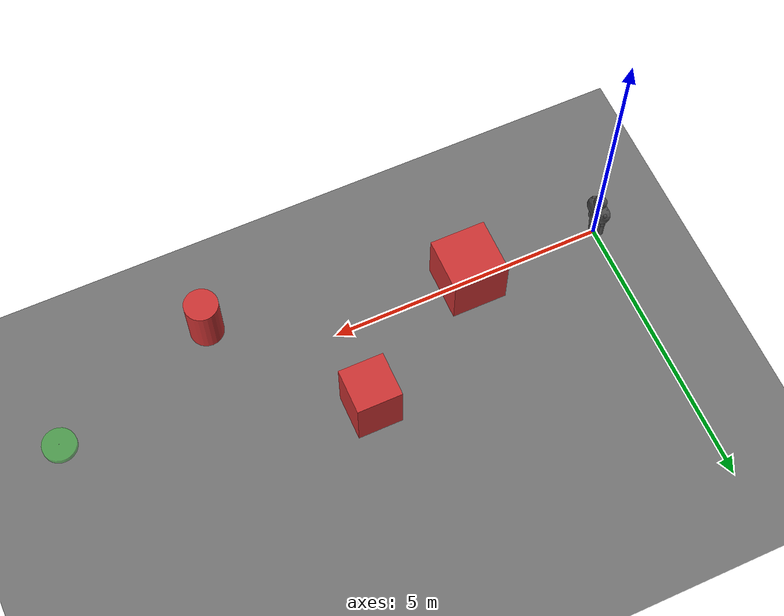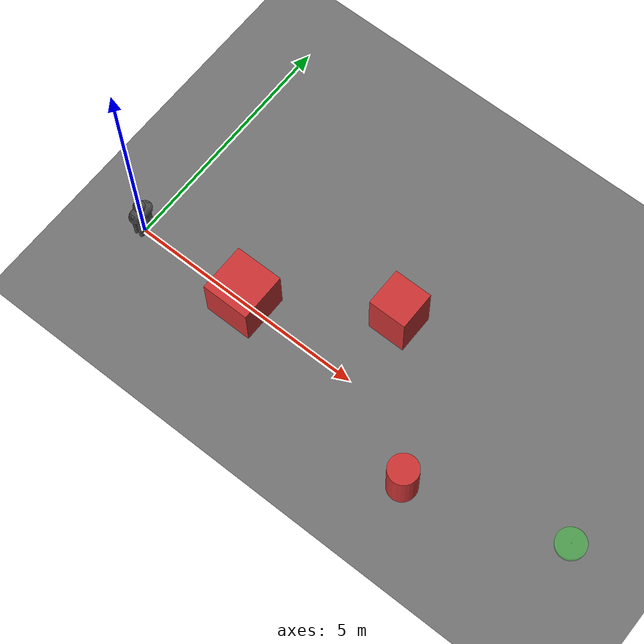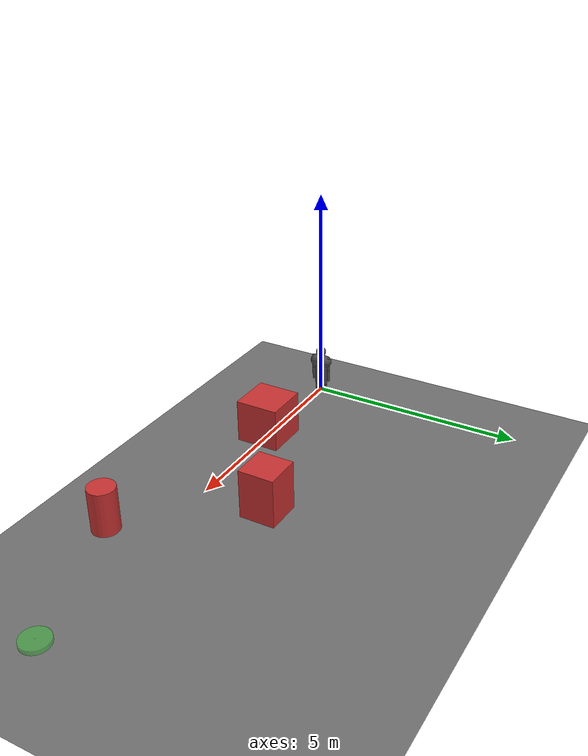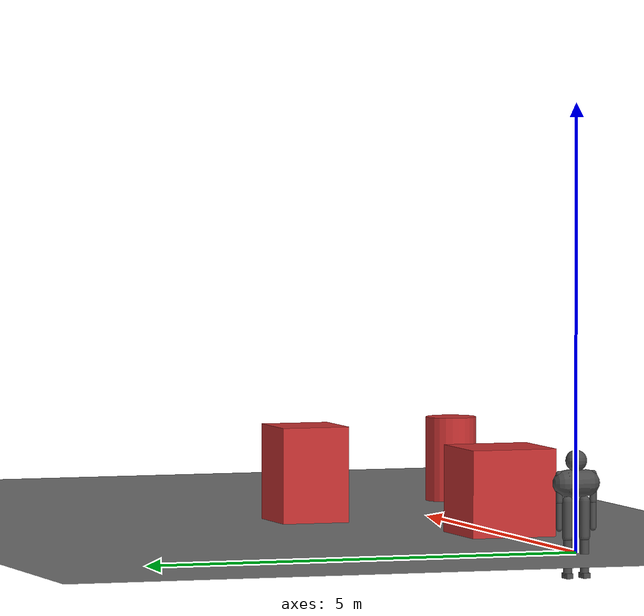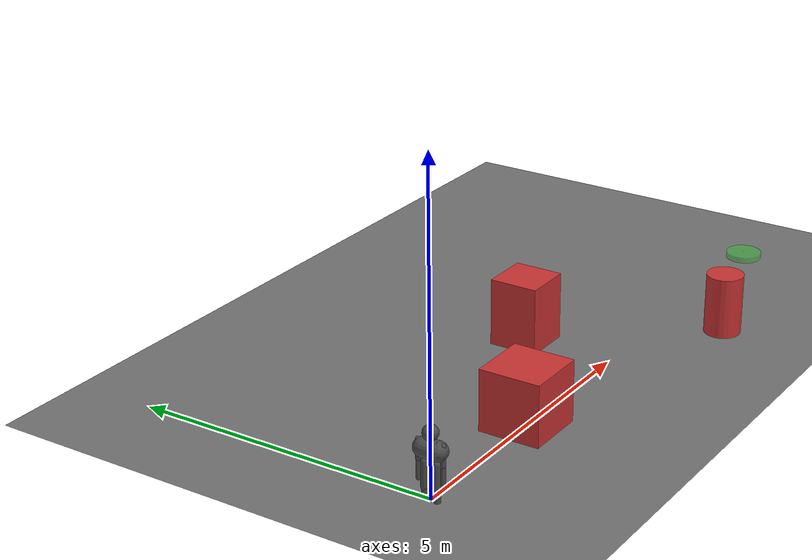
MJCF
<mujoco model="g1_obstacle_navigation">
  <compiler angle="radian" meshdir="." autolimits="true"/>

  <option timestep="0.001" gravity="0 0 -9.81" integrator="implicitfast">
    <flag/>
  </option>

  <default>
    <joint armature="0.01" damping="0.1"/>
    <geom condim="4" friction="1.0 0.005 0.0001"/>
    <motor ctrllimited="true"/>
  </default>

  <asset>
    <!-- G1 meshes from MuJoCo Menagerie -->
    <texture name="grid" type="2d" builtin="checker" rgb1="0.4 0.4 0.4" rgb2="0.5 0.5 0.5" width="512" height="512"/>
    <material name="grid_mat" texture="grid" texrepeat="10 10" reflectance="0.1"/>
    <material name="obstacle_mat" rgba="0.8 0.2 0.2 1"/>
    <material name="goal_mat" rgba="0.2 0.8 0.2 0.5"/>
    <material name="robot_mat" rgba="0.3 0.3 0.3 1"/>
  </asset>

  <worldbody>
    <!-- Ground -->
    <geom name="ground" type="plane" size="20 20 0.1" material="grid_mat"/>
    <light name="top_light" pos="0 0 10" dir="0 0 -1" diffuse="0.8 0.8 0.8"/>
    <light name="side_light" pos="5 5 5" dir="-1 -1 -1" diffuse="0.4 0.4 0.4"/>

    <!-- G1 Robot (simplified humanoid body) -->
    <body name="torso" pos="0 0 0.78">
      <inertial mass="35.0" pos="0 0 0" diaginertia="1.0 1.0 1.0"/>
      <geom name="torso_geom" type="capsule" size="0.15" fromto="0 -0.12 0 0 0.12 0" material="robot_mat"/>

      <!-- Head -->
      <body name="head" pos="0 0 0.25">
        <inertial mass="2.0" pos="0 0 0" diaginertia="0.1 0.1 0.1"/>
        <geom name="head_geom" type="sphere" size="0.12" material="robot_mat"/>
      </body>

      <!-- Left Arm -->
      <body name="left_upper_arm" pos="0 0.2 0.1">
        <inertial mass="2.0" pos="0 0 -0.15" diaginertia="0.05 0.05 0.05"/>
        <joint name="left_shoulder_pitch" type="hinge" axis="1 0 0" range="-3.14 3.14"/>
        <geom name="left_upper_arm_geom" type="capsule" size="0.04" fromto="0 0 0 0 0 -0.3" material="robot_mat"/>

        <body name="left_lower_arm" pos="0 0 -0.3">
          <inertial mass="1.5" pos="0 0 -0.15" diaginertia="0.03 0.03 0.03"/>
          <joint name="left_elbow" type="hinge" axis="0 1 0" range="-2.5 0"/>
          <geom name="left_lower_arm_geom" type="capsule" size="0.035" fromto="0 0 0 0 0 -0.3" material="robot_mat"/>
        </body>
      </body>

      <!-- Right Arm -->
      <body name="right_upper_arm" pos="0 -0.2 0.1">
        <inertial mass="2.0" pos="0 0 -0.15" diaginertia="0.05 0.05 0.05"/>
        <joint name="right_shoulder_pitch" type="hinge" axis="1 0 0" range="-3.14 3.14"/>
        <geom name="right_upper_arm_geom" type="capsule" size="0.04" fromto="0 0 0 0 0 -0.3" material="robot_mat"/>

        <body name="right_lower_arm" pos="0 0 -0.3">
          <inertial mass="1.5" pos="0 0 -0.15" diaginertia="0.03 0.03 0.03"/>
          <joint name="right_elbow" type="hinge" axis="0 1 0" range="-2.5 0"/>
          <geom name="right_lower_arm_geom" type="capsule" size="0.035" fromto="0 0 0 0 0 -0.3" material="robot_mat"/>
        </body>
      </body>

      <!-- Left Leg -->
      <body name="left_thigh" pos="0 0.1 -0.2">
        <inertial mass="5.0" pos="0 0 -0.2" diaginertia="0.1 0.1 0.1"/>
        <joint name="left_hip_pitch" type="hinge" axis="1 0 0" range="-1.5 1.5"/>
        <geom name="left_thigh_geom" type="capsule" size="0.06" fromto="0 0 0 0 0 -0.4" material="robot_mat"/>

        <body name="left_shin" pos="0 0 -0.4">
          <inertial mass="4.0" pos="0 0 -0.2" diaginertia="0.08 0.08 0.08"/>
          <joint name="left_knee" type="hinge" axis="0 1 0" range="-2.5 0"/>
          <geom name="left_shin_geom" type="capsule" size="0.05" fromto="0 0 0 0 0 -0.4" material="robot_mat"/>

          <body name="left_foot" pos="0 0 -0.4">
            <inertial mass="1.0" pos="0 0 -0.03" diaginertia="0.01 0.01 0.01"/>
            <joint name="left_ankle" type="hinge" axis="0 1 0" range="-0.5 0.5"/>
            <geom name="left_foot_geom" type="box" size="0.08 0.04 0.03" pos="0 0 -0.03" material="robot_mat"/>
            <site name="left_foot_site" pos="0 0 -0.06"/>
          </body>
        </body>
      </body>

      <!-- Right Leg -->
      <body name="right_thigh" pos="0 -0.1 -0.2">
        <inertial mass="5.0" pos="0 0 -0.2" diaginertia="0.1 0.1 0.1"/>
        <joint name="right_hip_pitch" type="hinge" axis="1 0 0" range="-1.5 1.5"/>
        <geom name="right_thigh_geom" type="capsule" size="0.06" fromto="0 0 0 0 0 -0.4" material="robot_mat"/>

        <body name="right_shin" pos="0 0 -0.4">
          <inertial mass="4.0" pos="0 0 -0.2" diaginertia="0.08 0.08 0.08"/>
          <joint name="right_knee" type="hinge" axis="0 1 0" range="-2.5 0"/>
          <geom name="right_shin_geom" type="capsule" size="0.05" fromto="0 0 0 0 0 -0.4" material="robot_mat"/>

          <body name="right_foot" pos="0 0 -0.4">
            <inertial mass="1.0" pos="0 0 -0.03" diaginertia="0.01 0.01 0.01"/>
            <joint name="right_ankle" type="hinge" axis="0 1 0" range="-0.5 0.5"/>
            <geom name="right_foot_geom" type="box" size="0.08 0.04 0.03" pos="0 0 -0.03" material="robot_mat"/>
            <site name="right_foot_site" pos="0 0 -0.06"/>
          </body>
        </body>
      </body>

      <!-- Free joint for base locomotion -->
      <freejoint name="root"/>
    </body>

    <!-- Obstacles -->
    <body name="obstacle_1" pos="2.5 0 0.5" mocap="true">
      <geom name="obs1_geom" type="box" size="0.5 0.5 0.5" material="obstacle_mat" contype="1" conaffinity="1"/>
    </body>

    <body name="obstacle_2" pos="5.0 1.5 0.5" mocap="true">
      <geom name="obs2_geom" type="box" size="0.4 0.4 0.6" material="obstacle_mat" contype="1" conaffinity="1"/>
    </body>

    <body name="obstacle_3" pos="7.0 -1.0 0.5" mocap="true">
      <geom name="obs3_geom" type="cylinder" size="0.3 0.5" material="obstacle_mat" contype="1" conaffinity="1"/>
    </body>

    <!-- Goal marker -->
    <body name="goal" pos="10.0 0 0.05">
      <geom name="goal_geom" type="cylinder" size="0.3 0.05" material="goal_mat" contype="0" conaffinity="0"/>
      <site name="goal_site" pos="0 0 0.05"/>
    </body>
  </worldbody>

  <!-- Sensors for metrics -->
  <sensor>
    <!-- Torso position -->
    <framepos name="torso_pos" objtype="body" objname="torso"/>
    <!-- Torso velocity -->
    <!-- Foot contacts -->
    <!-- Goal distance -->
  </sensor>

  <!-- Actuators for locomotion -->
  <actuator>
    <motor name="root_x" joint="root" gear="1 0 0 0 0 0" ctrlrange="-100 100"/>
    <motor name="root_y" joint="root" gear="0 1 0 0 0 0" ctrlrange="-100 100"/>
    <motor name="root_yaw" joint="root" gear="0 0 0 0 0 1" ctrlrange="-50 50"/>
    <position name="left_hip_act" joint="left_hip_pitch" kp="200" ctrlrange="-1.5 1.5"/>
    <position name="left_knee_act" joint="left_knee" kp="200" ctrlrange="-2.5 0"/>
    <position name="left_ankle_act" joint="left_ankle" kp="50" ctrlrange="-0.5 0.5"/>
    <position name="right_hip_act" joint="right_hip_pitch" kp="200" ctrlrange="-1.5 1.5"/>
    <position name="right_knee_act" joint="right_knee" kp="200" ctrlrange="-2.5 0"/>
    <position name="right_ankle_act" joint="right_ankle" kp="50" ctrlrange="-0.5 0.5"/>
    <position name="left_shoulder_act" joint="left_shoulder_pitch" kp="100" ctrlrange="-3.14 3.14"/>
    <position name="left_elbow_act" joint="left_elbow" kp="100" ctrlrange="-2.5 0"/>
    <position name="right_shoulder_act" joint="right_shoulder_pitch" kp="100" ctrlrange="-3.14 3.14"/>
    <position name="right_elbow_act" joint="right_elbow" kp="100" ctrlrange="-2.5 0"/>
  </actuator>
</mujoco>
